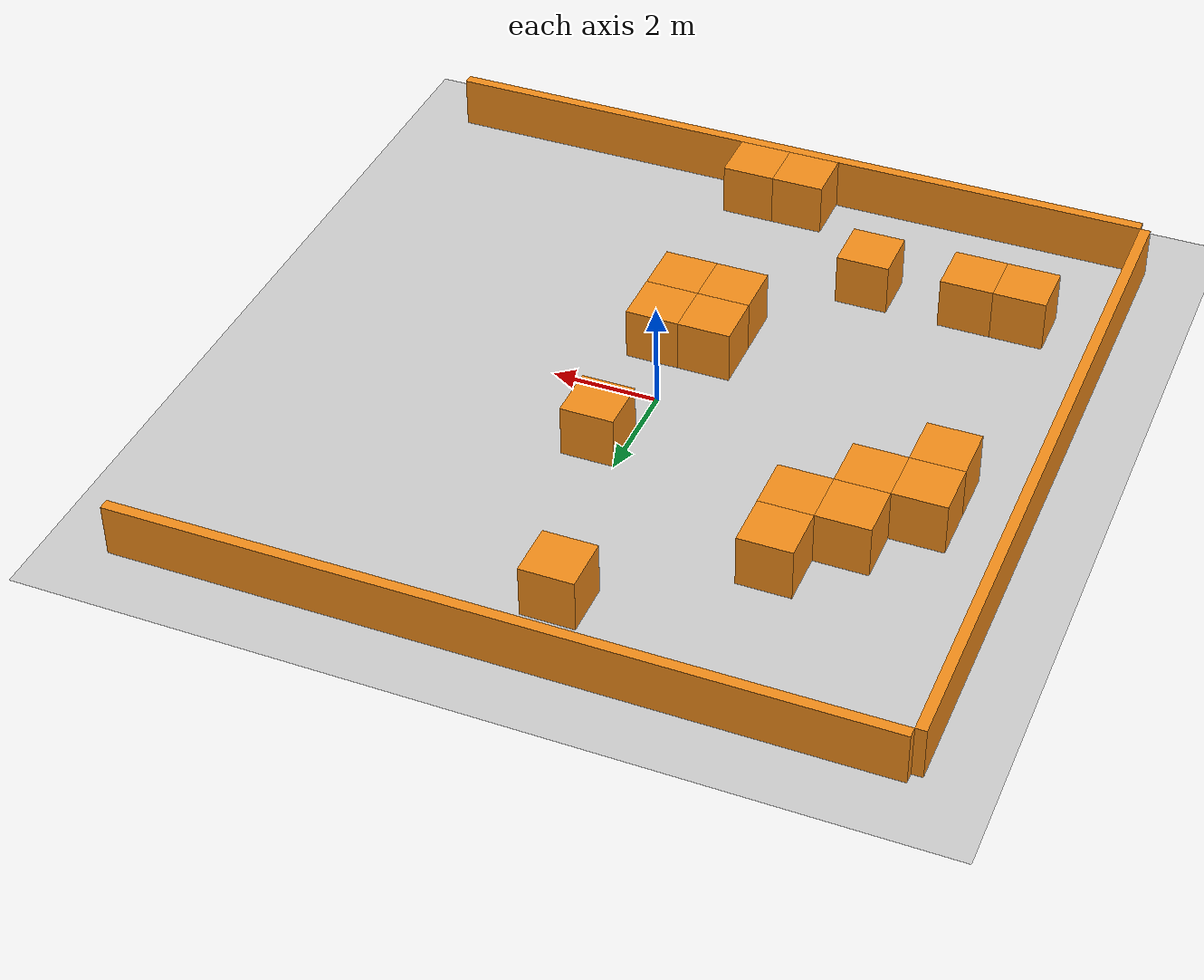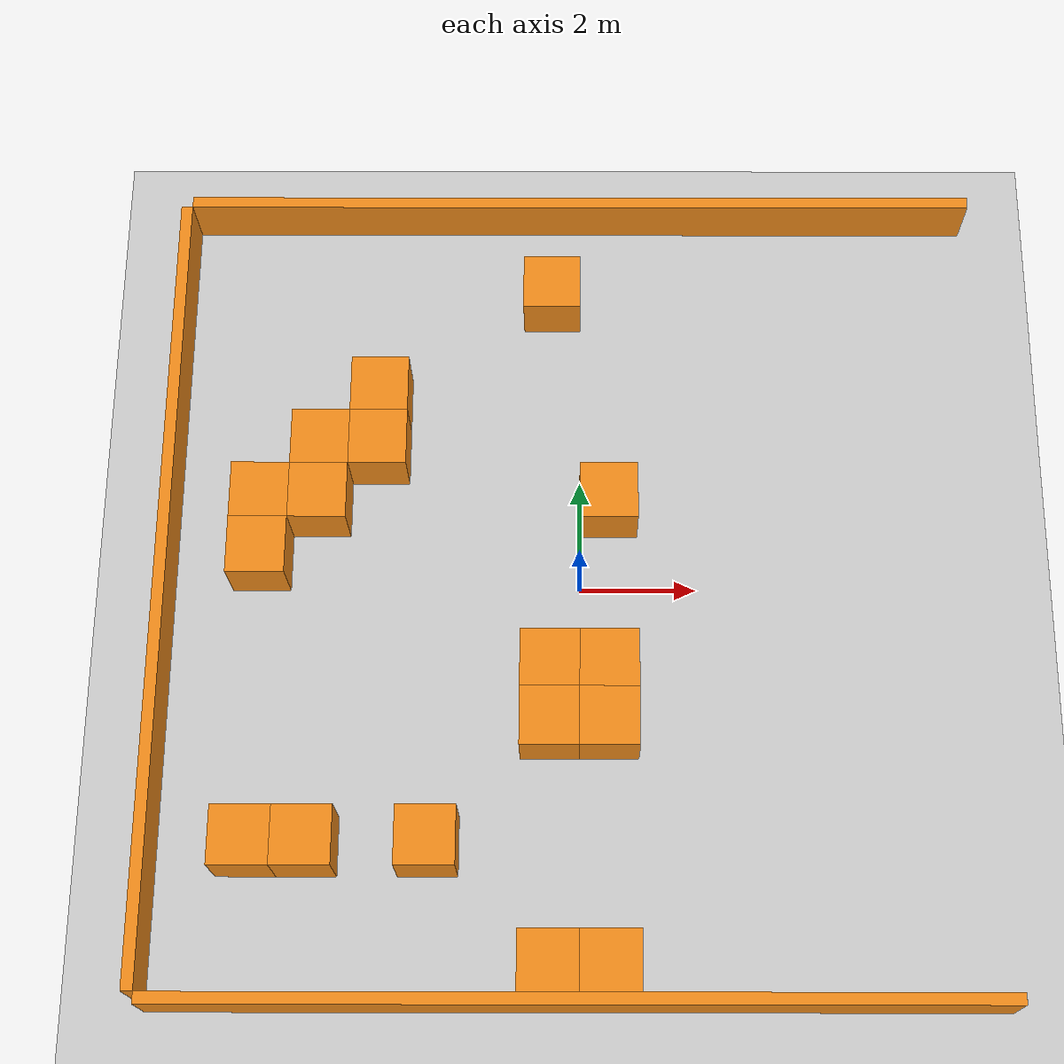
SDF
<sdf version="1.6">
 <world name="default">
  <model name="ground_plane">
   <static>1</static>
   <link name="link">
    <collision name="collision">
     <geometry><plane><normal>0 0 1</normal><size>50 50</size></plane></geometry>
     <surface><friction><ode><mu>100</mu><mu2>50</mu2></ode></friction></surface>
    </collision>
    <visual name="visual">
     <cast_shadows>0</cast_shadows>
     <geometry><plane><normal>0 0 1</normal><size>100 100</size></plane></geometry>
     <material>
      <script><name>Gazebo/Grey</name><uri>file://media/materials/scripts/gazebo.material</uri></script>
     </material>
    </visual>
    <velocity_decay><linear>0</linear><angular>0</angular></velocity_decay>
   </link>
  </model>
  <model name="outer_barrier_1">
   <pose>-7.1 0 0.5 0 -0 0</pose>
   <static>1</static>
   <link name="link">
    <inertial>
     <mass>1</mass>
     <inertia>
      <ixx>0.166667</ixx>
      <ixy>0</ixy>
      <ixz>0</ixz>
      <iyy>0.166667</iyy>
      <iyz>0</iyz>
      <izz>0.166667</izz>
     </inertia>
    </inertial>
    <collision name="collision"><geometry><box><size>0.2 14 1</size></box></geometry></collision>
    <visual name="visual">
     <geometry><box><size>0.2 14 1</size></box></geometry>
     <material>
      <script><name>Gazebo/Orange</name><uri>file://media/materials/scripts/gazebo.material</uri></script>
     </material>
    </visual>
   </link>
  </model>
  <model name="outer_barrier_3">
   <pose>0 7.1 0.5 0 -0 1.5708</pose>
   <static>1</static>
   <link name="link">
    <inertial>
     <mass>1</mass>
     <inertia>
      <ixx>0.166667</ixx>
      <ixy>0</ixy>
      <ixz>0</ixz>
      <iyy>0.166667</iyy>
      <iyz>0</iyz>
      <izz>0.166667</izz>
     </inertia>
    </inertial>
    <collision name="collision"><geometry><box><size>0.2 14 1</size></box></geometry></collision>
    <visual name="visual">
     <geometry><box><size>0.2 14 1</size></box></geometry>
     <material>
      <script><name>Gazebo/Orange</name><uri>file://media/materials/scripts/gazebo.material</uri></script>
     </material>
    </visual>
   </link>
  </model>
  <model name="outer_barrier_4">
   <pose>0 -7.1 0.5 0 -0 1.5708</pose>
   <static>1</static>
   <link name="link">
    <inertial>
     <mass>1</mass>
     <inertia>
      <ixx>0.166667</ixx>
      <ixy>0</ixy>
      <ixz>0</ixz>
      <iyy>0.166667</iyy>
      <iyz>0</iyz>
      <izz>0.166667</izz>
     </inertia>
    </inertial>
    <collision name="collision"><geometry><box><size>0.2 14 1</size></box></geometry></collision>
    <visual name="visual">
     <geometry><box><size>0.2 14 1</size></box></geometry>
     <material>
      <script><name>Gazebo/Orange</name><uri>file://media/materials/scripts/gazebo.material</uri></script>
     </material>
    </visual>
   </link>
  </model>
  <model name="box_08">
   <pose>-0.5 -6.5 0.5 0 -0 0</pose>
   <static>1</static>
   <link name="link">
    <inertial>
     <mass>1</mass>
     <inertia>
      <ixx>0.166667</ixx>
      <ixy>0</ixy>
      <ixz>0</ixz>
      <iyy>0.166667</iyy>
      <iyz>0</iyz>
      <izz>0.166667</izz>
     </inertia>
    </inertial>
    <collision name="collision"><geometry><box><size>0.999998 1 1</size></box></geometry></collision>
    <visual name="visual">
     <geometry><box><size>0.999998 1 1</size></box></geometry>
     <material>
      <script><name>Gazebo/Orange</name><uri>file://media/materials/scripts/gazebo.material</uri></script>
     </material>
    </visual>
   </link>
  </model>
  <model name="box_09">
   <pose>0.5 -6.5 0.5 0 -0 0</pose>
   <static>1</static>
   <link name="link">
    <inertial>
     <mass>1</mass>
     <inertia>
      <ixx>0.166667</ixx>
      <ixy>0</ixy>
      <ixz>0</ixz>
      <iyy>0.166667</iyy>
      <iyz>0</iyz>
      <izz>0.166667</izz>
     </inertia>
    </inertial>
    <collision name="collision"><geometry><box><size>0.999998 1 1</size></box></geometry></collision>
    <visual name="visual">
     <geometry><box><size>0.999998 1 1</size></box></geometry>
     <material>
      <script><name>Gazebo/Orange</name><uri>file://media/materials/scripts/gazebo.material</uri></script>
     </material>
    </visual>
   </link>
  </model>
  <model name="box_12">
   <pose>-0.5 5.5 0.5 0 -0 0</pose>
   <static>1</static>
   <link name="link">
    <inertial>
     <mass>1</mass>
     <inertia>
      <ixx>0.166667</ixx>
      <ixy>0</ixy>
      <ixz>0</ixz>
      <iyy>0.166667</iyy>
      <iyz>0</iyz>
      <izz>0.166667</izz>
     </inertia>
    </inertial>
    <collision name="collision"><geometry><box><size>0.999998 1 1</size></box></geometry></collision>
    <visual name="visual">
     <geometry><box><size>0.999998 1 1</size></box></geometry>
     <material>
      <script><name>Gazebo/Orange</name><uri>file://media/materials/scripts/gazebo.material</uri></script>
     </material>
    </visual>
   </link>
  </model>
  <model name="box_14">
   <pose>-0.5 -1.5 0.5 0 -0 0</pose>
   <static>1</static>
   <link name="link">
    <inertial>
     <mass>1</mass>
     <inertia>
      <ixx>0.166667</ixx>
      <ixy>0</ixy>
      <ixz>0</ixz>
      <iyy>0.166667</iyy>
      <iyz>0</iyz>
      <izz>0.166667</izz>
     </inertia>
    </inertial>
    <collision name="collision"><geometry><box><size>0.999998 1 1</size></box></geometry></collision>
    <visual name="visual">
     <geometry><box><size>0.999998 1 1</size></box></geometry>
     <material>
      <script><name>Gazebo/Orange</name><uri>file://media/materials/scripts/gazebo.material</uri></script>
     </material>
    </visual>
   </link>
  </model>
  <model name="box_15">
   <pose>-0.5 -2.5 0.5 0 -0 0</pose>
   <static>1</static>
   <link name="link">
    <inertial>
     <mass>1</mass>
     <inertia>
      <ixx>0.166667</ixx>
      <ixy>0</ixy>
      <ixz>0</ixz>
      <iyy>0.166667</iyy>
      <iyz>0</iyz>
      <izz>0.166667</izz>
     </inertia>
    </inertial>
    <collision name="collision"><geometry><box><size>0.999998 1 1</size></box></geometry></collision>
    <visual name="visual">
     <geometry><box><size>0.999998 1 1</size></box></geometry>
     <material>
      <script><name>Gazebo/Orange</name><uri>file://media/materials/scripts/gazebo.material</uri></script>
     </material>
    </visual>
   </link>
  </model>
  <model name="box_16">
   <pose>-2.5 -4.5 0.5 0 -0 0</pose>
   <static>1</static>
   <link name="link">
    <inertial>
     <mass>1</mass>
     <inertia>
      <ixx>0.166667</ixx>
      <ixy>0</ixy>
      <ixz>0</ixz>
      <iyy>0.166667</iyy>
      <iyz>0</iyz>
      <izz>0.166667</izz>
     </inertia>
    </inertial>
    <collision name="collision"><geometry><box><size>0.999998 1 1</size></box></geometry></collision>
    <visual name="visual">
     <geometry><box><size>0.999998 1 1</size></box></geometry>
     <material>
      <script><name>Gazebo/Orange</name><uri>file://media/materials/scripts/gazebo.material</uri></script>
     </material>
    </visual>
   </link>
  </model>
  <model name="box_18">
   <pose>0.5 1.5 0.5 0 -0 0</pose>
   <static>1</static>
   <link name="link">
    <inertial>
     <mass>1</mass>
     <inertia>
      <ixx>0.166667</ixx>
      <ixy>0</ixy>
      <ixz>0</ixz>
      <iyy>0.166667</iyy>
      <iyz>0</iyz>
      <izz>0.166667</izz>
     </inertia>
    </inertial>
    <collision name="collision"><geometry><box><size>0.999998 1 1</size></box></geometry></collision>
    <visual name="visual">
     <geometry><box><size>0.999998 1 1</size></box></geometry>
     <material>
      <script><name>Gazebo/Orange</name><uri>file://media/materials/scripts/gazebo.material</uri></script>
     </material>
    </visual>
   </link>
  </model>
  <model name="box_19">
   <pose>0.5 -1.5 0.5 0 -0 0</pose>
   <static>1</static>
   <link name="link">
    <inertial>
     <mass>1</mass>
     <inertia>
      <ixx>0.166667</ixx>
      <ixy>0</ixy>
      <ixz>0</ixz>
      <iyy>0.166667</iyy>
      <iyz>0</iyz>
      <izz>0.166667</izz>
     </inertia>
    </inertial>
    <collision name="collision"><geometry><box><size>0.999998 1 1</size></box></geometry></collision>
    <visual name="visual">
     <geometry><box><size>0.999998 1 1</size></box></geometry>
     <material>
      <script><name>Gazebo/Orange</name><uri>file://media/materials/scripts/gazebo.material</uri></script>
     </material>
    </visual>
   </link>
  </model>
  <model name="box_20">
   <pose>0.5 -2.5 0.5 0 -0 0</pose>
   <static>1</static>
   <link name="link">
    <inertial>
     <mass>1</mass>
     <inertia>
      <ixx>0.166667</ixx>
      <ixy>0</ixy>
      <ixz>0</ixz>
      <iyy>0.166667</iyy>
      <iyz>0</iyz>
      <izz>0.166667</izz>
     </inertia>
    </inertial>
    <collision name="collision"><geometry><box><size>0.999998 1 1</size></box></geometry></collision>
    <visual name="visual">
     <geometry><box><size>0.999998 1 1</size></box></geometry>
     <material>
      <script><name>Gazebo/Orange</name><uri>file://media/materials/scripts/gazebo.material</uri></script>
     </material>
    </visual>
   </link>
  </model>
  <model name="box_21">
   <pose>-4.5 -4.5 0.5 0 -0 0</pose>
   <static>1</static>
   <link name="link">
    <inertial>
     <mass>1</mass>
     <inertia>
      <ixx>0.166667</ixx>
      <ixy>0</ixy>
      <ixz>0</ixz>
      <iyy>0.166667</iyy>
      <iyz>0</iyz>
      <izz>0.166667</izz>
     </inertia>
    </inertial>
    <collision name="collision"><geometry><box><size>0.999998 1 1</size></box></geometry></collision>
    <visual name="visual">
     <geometry><box><size>0.999998 1 1</size></box></geometry>
     <material>
      <script><name>Gazebo/Orange</name><uri>file://media/materials/scripts/gazebo.material</uri></script>
     </material>
    </visual>
   </link>
  </model>
  <model name="box_22">
   <pose>-5.5 -4.5 0.5 0 -0 0</pose>
   <static>1</static>
   <link name="link">
    <inertial>
     <mass>1</mass>
     <inertia>
      <ixx>0.166667</ixx>
      <ixy>0</ixy>
      <ixz>0</ixz>
      <iyy>0.166667</iyy>
      <iyz>0</iyz>
      <izz>0.166667</izz>
     </inertia>
    </inertial>
    <collision name="collision"><geometry><box><size>0.999998 1 1</size></box></geometry></collision>
    <visual name="visual">
     <geometry><box><size>0.999998 1 1</size></box></geometry>
     <material>
      <script><name>Gazebo/Orange</name><uri>file://media/materials/scripts/gazebo.material</uri></script>
     </material>
    </visual>
   </link>
  </model>
  <model name="box_30">
   <pose>-5.5 0.5 0.5 0 -0 0</pose>
   <static>1</static>
   <link name="link">
    <inertial>
     <mass>1</mass>
     <inertia>
      <ixx>0.166667</ixx>
      <ixy>0</ixy>
      <ixz>0</ixz>
      <iyy>0.166667</iyy>
      <iyz>0</iyz>
      <izz>0.166667</izz>
     </inertia>
    </inertial>
    <collision name="collision"><geometry><box><size>0.999998 1 1</size></box></geometry></collision>
    <visual name="visual">
     <geometry><box><size>0.999998 1 1</size></box></geometry>
     <material>
      <script><name>Gazebo/Orange</name><uri>file://media/materials/scripts/gazebo.material</uri></script>
     </material>
    </visual>
   </link>
  </model>
  <model name="box_31">
   <pose>-5.5 1.5 0.5 0 -0 0</pose>
   <static>1</static>
   <link name="link">
    <inertial>
     <mass>1</mass>
     <inertia>
      <ixx>0.166667</ixx>
      <ixy>0</ixy>
      <ixz>0</ixz>
      <iyy>0.166667</iyy>
      <iyz>0</iyz>
      <izz>0.166667</izz>
     </inertia>
    </inertial>
    <collision name="collision"><geometry><box><size>0.999998 1 1</size></box></geometry></collision>
    <visual name="visual">
     <geometry><box><size>0.999998 1 1</size></box></geometry>
     <material>
      <script><name>Gazebo/Orange</name><uri>file://media/materials/scripts/gazebo.material</uri></script>
     </material>
    </visual>
   </link>
  </model>
  <model name="box_32">
   <pose>-4.5 1.5 0.5 0 -0 0</pose>
   <static>1</static>
   <link name="link">
    <inertial>
     <mass>1</mass>
     <inertia>
      <ixx>0.166667</ixx>
      <ixy>0</ixy>
      <ixz>0</ixz>
      <iyy>0.166667</iyy>
      <iyz>0</iyz>
      <izz>0.166667</izz>
     </inertia>
    </inertial>
    <collision name="collision"><geometry><box><size>0.999998 1 1</size></box></geometry></collision>
    <visual name="visual">
     <geometry><box><size>0.999998 1 1</size></box></geometry>
     <material>
      <script><name>Gazebo/Orange</name><uri>file://media/materials/scripts/gazebo.material</uri></script>
     </material>
    </visual>
   </link>
  </model>
  <model name="box_33">
   <pose>-4.5 2.5 0.5 0 -0 0</pose>
   <static>1</static>
   <link name="link">
    <inertial>
     <mass>1</mass>
     <inertia>
      <ixx>0.166667</ixx>
      <ixy>0</ixy>
      <ixz>0</ixz>
      <iyy>0.166667</iyy>
      <iyz>0</iyz>
      <izz>0.166667</izz>
     </inertia>
    </inertial>
    <collision name="collision"><geometry><box><size>0.999998 1 1</size></box></geometry></collision>
    <visual name="visual">
     <geometry><box><size>0.999998 1 1</size></box></geometry>
     <material>
      <script><name>Gazebo/Orange</name><uri>file://media/materials/scripts/gazebo.material</uri></script>
     </material>
    </visual>
   </link>
  </model>
  <model name="box_34">
   <pose>-3.5 2.5 0.5 0 -0 0</pose>
   <static>1</static>
   <link name="link">
    <inertial>
     <mass>1</mass>
     <inertia>
      <ixx>0.166667</ixx>
      <ixy>0</ixy>
      <ixz>0</ixz>
      <iyy>0.166667</iyy>
      <iyz>0</iyz>
      <izz>0.166667</izz>
     </inertia>
    </inertial>
    <collision name="collision"><geometry><box><size>0.999998 1 1</size></box></geometry></collision>
    <visual name="visual">
     <geometry><box><size>0.999998 1 1</size></box></geometry>
     <material>
      <script><name>Gazebo/Orange</name><uri>file://media/materials/scripts/gazebo.material</uri></script>
     </material>
    </visual>
   </link>
  </model>
  <model name="box_35">
   <pose>-3.5 3.5 0.5 0 -0 0</pose>
   <static>1</static>
   <link name="link">
    <inertial>
     <mass>1</mass>
     <inertia>
      <ixx>0.166667</ixx>
      <ixy>0</ixy>
      <ixz>0</ixz>
      <iyy>0.166667</iyy>
      <iyz>0</iyz>
      <izz>0.166667</izz>
     </inertia>
    </inertial>
    <collision name="collision"><geometry><box><size>0.999998 1 1</size></box></geometry></collision>
    <visual name="visual">
     <geometry><box><size>0.999998 1 1</size></box></geometry>
     <material>
      <script><name>Gazebo/Orange</name><uri>file://media/materials/scripts/gazebo.material</uri></script>
     </material>
    </visual>
   </link>
  </model>
 </world>
</sdf>
